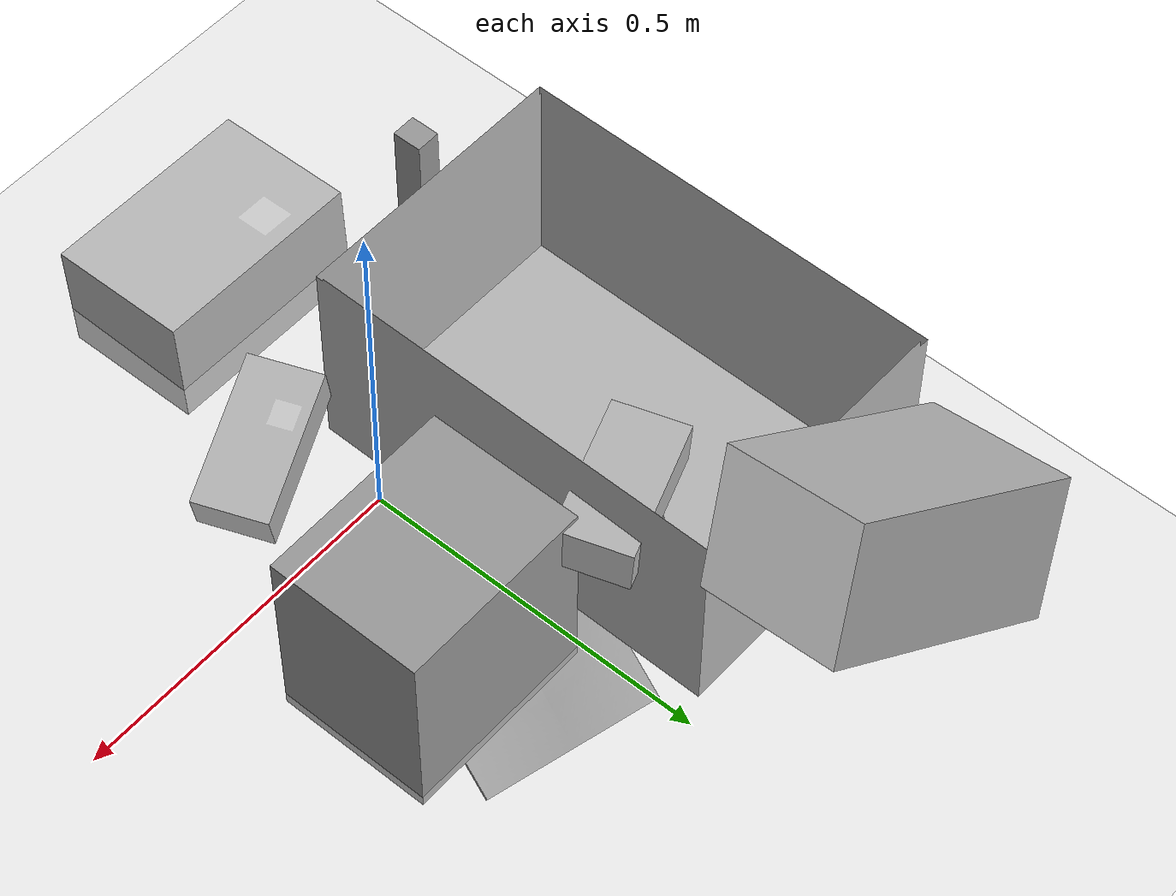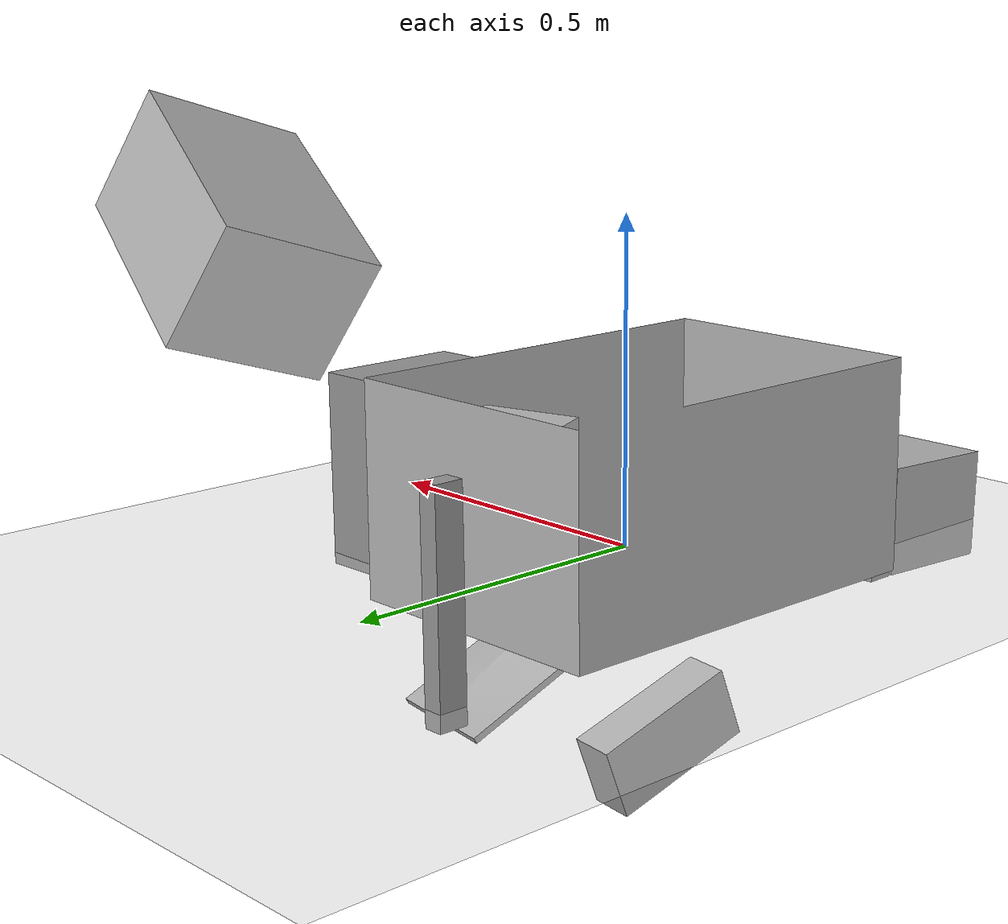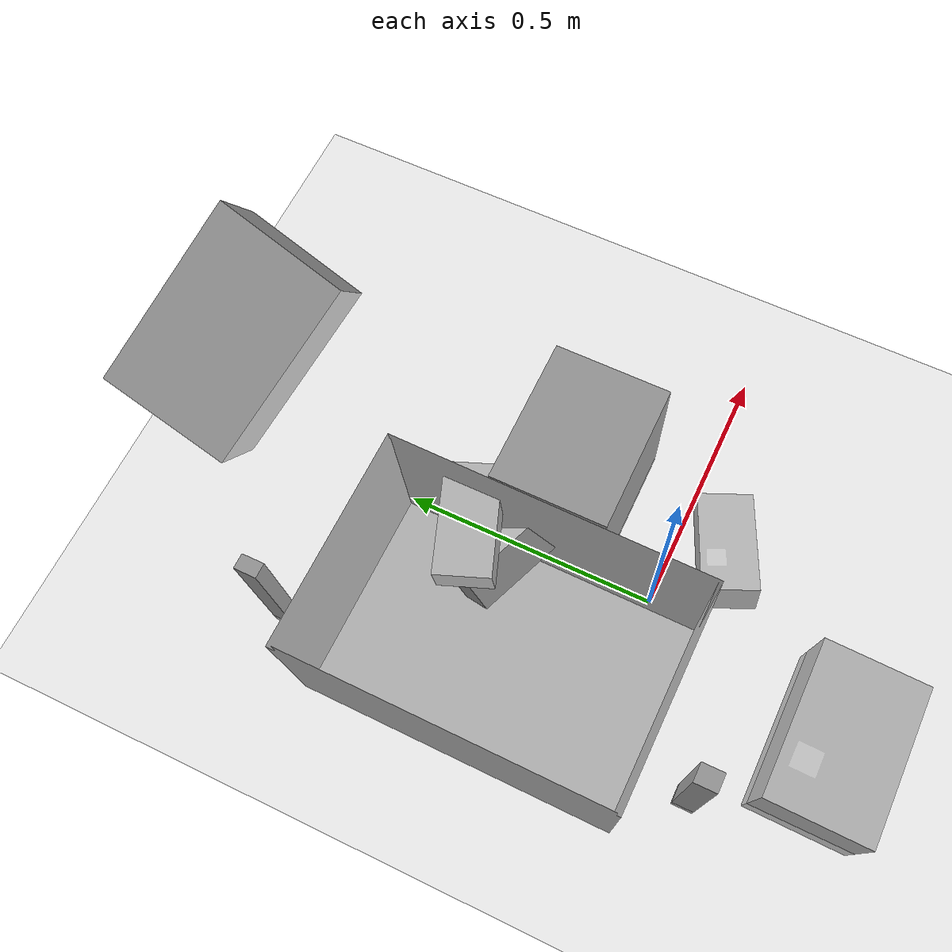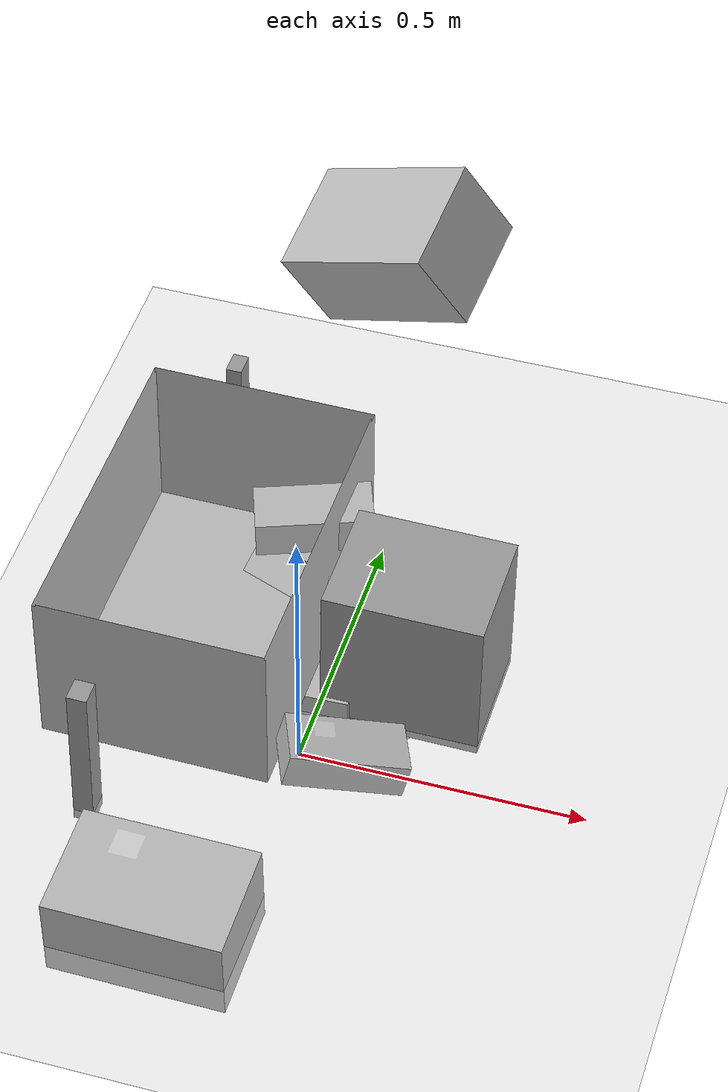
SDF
<sdf version="1.7">
 <world name="default">
  <model name="ground_plane">
   <static>1</static>
   <link name="link">
    <collision name="collision">
     <geometry><plane><normal>0 0 1</normal><size>100 100</size></plane></geometry>
     <surface>
      <contact><collide_bitmask>65535</collide_bitmask></contact>
      <friction><ode><mu>100</mu><mu2>50</mu2></ode></friction>
     </surface>
    </collision>
    <visual name="visual">
     <cast_shadows>0</cast_shadows>
     <geometry><plane><normal>0 0 1</normal><size>100 100</size></plane></geometry>
     <material>
      <script><uri>file://media/materials/scripts/gazebo.material</uri><name>Gazebo/Grey</name></script>
     </material>
    </visual>
   </link>
  </model>
  <model name="trolley">
   <link name="link">
    <inertial>
     <mass>10</mass>
     <inertia><ixy>0</ixy><ixz>0</ixz><iyz>0</iyz><ixx>0.05288</ixx><iyy>0.05288</iyy><izz>0.09132</izz></inertia>
    </inertial>
    <visual name="visual">
     <geometry><mesh><uri>model://trolley/meshes/trolley.dae</uri><scale>1 1 1</scale></mesh></geometry>
     <meta><layer>1</layer></meta>
     <material><shader type="pixel"/></material>
    </visual>
    <collision name="collision">
     <geometry><mesh><uri>model://trolley/meshes/trolley.dae</uri><scale>1 1 1</scale></mesh></geometry>
     <surface>
      <friction>
       <ode><mu>1</mu><mu2>1</mu2><fdir1>0 0 0</fdir1><slip1>0</slip1><slip2>0</slip2></ode>
       <torsional>
        <coefficient>1</coefficient>
        <patch_radius>0</patch_radius>
        <surface_radius>0</surface_radius>
        <use_patch_radius>1</use_patch_radius>
        <ode><slip>0</slip></ode>
       </torsional>
      </friction>
      <bounce><restitution_coefficient>0</restitution_coefficient><threshold>1e+06</threshold></bounce>
      <contact>
       <collide_without_contact>0</collide_without_contact>
       <collide_without_contact_bitmask>1</collide_without_contact_bitmask>
       <collide_bitmask>1</collide_bitmask>
       <ode>
        <soft_cfm>0</soft_cfm>
        <soft_erp>0.2</soft_erp>
        <kp>1e+13</kp>
        <kd>1</kd>
        <max_vel>0.01</max_vel>
        <min_depth>0</min_depth>
       </ode>
       <bullet>
        <split_impulse>1</split_impulse>
        <split_impulse_penetration_threshold>-0.01</split_impulse_penetration_threshold>
        <soft_cfm>0</soft_cfm>
        <soft_erp>0.2</soft_erp>
        <kp>1e+13</kp>
        <kd>1</kd>
       </bullet>
      </contact>
     </surface>
    </collision>
   </link>
   <static>1</static>
   <pose>-0.219324 0.197143 0.037574 0.003714 -0 1.56371</pose>
  </model>
  <model name="unit_box">
   <link name="link">
    <inertial>
     <mass>1</mass>
     <inertia>
      <ixx>0.166667</ixx>
      <ixy>0</ixy>
      <ixz>0</ixz>
      <iyy>0.166667</iyy>
      <iyz>0</iyz>
      <izz>0.166667</izz>
     </inertia>
    </inertial>
    <visual name="visual">
     <geometry><box><size>0.278742 0.220351 0.289713</size></box></geometry>
     <material>
      <script><name>Gazebo/Grey</name><uri>file://media/materials/scripts/gazebo.material</uri></script>
      <shader type="pixel"><normal_map>__default__</normal_map></shader>
     </material>
    </visual>
    <collision name="collision">
     <geometry><box><size>0.278742 0.220351 0.289713</size></box></geometry>
     <surface>
      <friction>
       <ode><mu>1</mu><mu2>1</mu2><fdir1>0 0 0</fdir1><slip1>0</slip1><slip2>0</slip2></ode>
       <torsional>
        <coefficient>1</coefficient>
        <patch_radius>0</patch_radius>
        <surface_radius>0</surface_radius>
        <use_patch_radius>1</use_patch_radius>
        <ode><slip>0</slip></ode>
       </torsional>
      </friction>
      <bounce><restitution_coefficient>0</restitution_coefficient><threshold>1e+06</threshold></bounce>
      <contact>
       <collide_without_contact>0</collide_without_contact>
       <collide_without_contact_bitmask>1</collide_without_contact_bitmask>
       <collide_bitmask>1</collide_bitmask>
       <ode>
        <soft_cfm>0</soft_cfm>
        <soft_erp>0.2</soft_erp>
        <kp>1e+13</kp>
        <kd>1</kd>
        <max_vel>0.01</max_vel>
        <min_depth>0</min_depth>
       </ode>
       <bullet>
        <split_impulse>1</split_impulse>
        <split_impulse_penetration_threshold>-0.01</split_impulse_penetration_threshold>
        <soft_cfm>0</soft_cfm>
        <soft_erp>0.2</soft_erp>
        <kp>1e+13</kp>
        <kd>1</kd>
       </bullet>
      </contact>
     </surface>
    </collision>
   </link>
   <static>1</static>
   <pose>0.144938 0.215931 0.127868 0 0.011281 0</pose>
  </model>
  <model name="unit_box_clone">
   <link name="link">
    <inertial>
     <mass>1</mass>
     <inertia>
      <ixx>0.166667</ixx>
      <ixy>0</ixy>
      <ixz>0</ixz>
      <iyy>0.166667</iyy>
      <iyz>0</iyz>
      <izz>0.166667</izz>
     </inertia>
    </inertial>
    <visual name="visual">
     <geometry><box><size>0.027911 0.0419579 0.304922</size></box></geometry>
     <material>
      <script><name>Gazebo/Grey</name><uri>file://media/materials/scripts/gazebo.material</uri></script>
      <shader type="pixel"><normal_map>__default__</normal_map></shader>
     </material>
    </visual>
    <collision name="collision">
     <geometry><box><size>0.027911 0.0419579 0.304922</size></box></geometry>
     <surface>
      <friction>
       <ode><mu>1</mu><mu2>1</mu2><fdir1>0 0 0</fdir1><slip1>0</slip1><slip2>0</slip2></ode>
       <torsional>
        <coefficient>1</coefficient>
        <patch_radius>0</patch_radius>
        <surface_radius>0</surface_radius>
        <use_patch_radius>1</use_patch_radius>
        <ode><slip>0</slip></ode>
       </torsional>
      </friction>
      <bounce><restitution_coefficient>0</restitution_coefficient><threshold>1e+06</threshold></bounce>
      <contact>
       <collide_without_contact>0</collide_without_contact>
       <collide_without_contact_bitmask>1</collide_without_contact_bitmask>
       <collide_bitmask>1</collide_bitmask>
       <ode>
        <soft_cfm>0</soft_cfm>
        <soft_erp>0.2</soft_erp>
        <kp>1e+13</kp>
        <kd>1</kd>
        <max_vel>0.01</max_vel>
        <min_depth>0</min_depth>
       </ode>
       <bullet>
        <split_impulse>1</split_impulse>
        <split_impulse_penetration_threshold>-0.01</split_impulse_penetration_threshold>
        <soft_cfm>0</soft_cfm>
        <soft_erp>0.2</soft_erp>
        <kp>1e+13</kp>
        <kd>1</kd>
       </bullet>
      </contact>
     </surface>
    </collision>
   </link>
   <static>1</static>
   <pose>-0.305092 0.611653 0.125999 0 0.011281 0</pose>
  </model>
  <model name="unit_box_clone_clone">
   <link name="link">
    <inertial>
     <mass>1</mass>
     <inertia>
      <ixx>0.166667</ixx>
      <ixy>0</ixy>
      <ixz>0</ixz>
      <iyy>0.166667</iyy>
      <iyz>0</iyz>
      <izz>0.166667</izz>
     </inertia>
    </inertial>
    <visual name="visual">
     <geometry><box><size>0.0347626 0.041958 0.298191</size></box></geometry>
     <material>
      <script><name>Gazebo/Grey</name><uri>file://media/materials/scripts/gazebo.material</uri></script>
      <shader type="pixel"><normal_map>__default__</normal_map></shader>
     </material>
    </visual>
    <collision name="collision">
     <geometry><box><size>0.0347626 0.041958 0.298191</size></box></geometry>
     <surface>
      <friction>
       <ode><mu>1</mu><mu2>1</mu2><fdir1>0 0 0</fdir1><slip1>0</slip1><slip2>0</slip2></ode>
       <torsional>
        <coefficient>1</coefficient>
        <patch_radius>0</patch_radius>
        <surface_radius>0</surface_radius>
        <use_patch_radius>1</use_patch_radius>
        <ode><slip>0</slip></ode>
       </torsional>
      </friction>
      <bounce><restitution_coefficient>0</restitution_coefficient><threshold>1e+06</threshold></bounce>
      <contact>
       <collide_without_contact>0</collide_without_contact>
       <collide_without_contact_bitmask>1</collide_without_contact_bitmask>
       <collide_bitmask>1</collide_bitmask>
       <ode>
        <soft_cfm>0</soft_cfm>
        <soft_erp>0.2</soft_erp>
        <kp>1e+13</kp>
        <kd>1</kd>
        <max_vel>0.01</max_vel>
        <min_depth>0</min_depth>
       </ode>
       <bullet>
        <split_impulse>1</split_impulse>
        <split_impulse_penetration_threshold>-0.01</split_impulse_penetration_threshold>
        <soft_cfm>0</soft_cfm>
        <soft_erp>0.2</soft_erp>
        <kp>1e+13</kp>
        <kd>1</kd>
       </bullet>
      </contact>
     </surface>
    </collision>
   </link>
   <static>1</static>
   <pose>-0.303942 -0.202713 0.128004 0 0.011281 0</pose>
  </model>
  <model name="flyer_box_1">
   <link name="link">
    <inertial>
     <mass>1</mass>
     <inertia><ixy>0</ixy><ixz>0</ixz><iyz>0</iyz><ixx>0.05288</ixx><iyy>0.05288</iyy><izz>0.09132</izz></inertia>
    </inertial>
    <visual name="visual">
     <geometry><mesh><uri>model://flyer_boxes/meshes/flyer.dae</uri><scale>1 1 1</scale></mesh></geometry>
     <meta><layer>1</layer></meta>
     <material><shader type="pixel"><normal_map>__default__</normal_map></shader></material>
    </visual>
    <collision name="collision">
     <geometry><mesh><uri>model://flyer_boxes/meshes/flyer.dae</uri><scale>1 1 1</scale></mesh></geometry>
     <surface>
      <friction>
       <ode><mu>1000</mu><mu2>1000</mu2><fdir1>0 0 0</fdir1><slip1>0</slip1><slip2>0</slip2></ode>
       <torsional>
        <coefficient>1</coefficient>
        <patch_radius>0</patch_radius>
        <surface_radius>0</surface_radius>
        <use_patch_radius>1</use_patch_radius>
        <ode><slip>0</slip></ode>
       </torsional>
      </friction>
      <bounce><restitution_coefficient>0</restitution_coefficient><threshold>1</threshold></bounce>
      <contact>
       <collide_without_contact>0</collide_without_contact>
       <collide_without_contact_bitmask>1</collide_without_contact_bitmask>
       <collide_bitmask>1</collide_bitmask>
       <ode>
        <soft_cfm>0</soft_cfm>
        <soft_erp>0.2</soft_erp>
        <kp>10000</kp>
        <kd>1</kd>
        <max_vel>0.01</max_vel>
        <min_depth>0</min_depth>
       </ode>
       <bullet>
        <split_impulse>1</split_impulse>
        <split_impulse_penetration_threshold>-0.01</split_impulse_penetration_threshold>
        <soft_cfm>0</soft_cfm>
        <soft_erp>0.2</soft_erp>
        <kp>10000</kp>
        <kd>1</kd>
       </bullet>
      </contact>
     </surface>
    </collision>
   </link>
   <static>0</static>
   <pose>-0.198123 0.208743 0.099492 0.137148 0.518647 1.32941</pose>
  </model>
  <model name="small_box_1">
   <link name="link">
    <inertial>
     <mass>0.5</mass>
     <inertia><ixy>0</ixy><ixz>0</ixz><iyz>0</iyz><ixx>0.05288</ixx><iyy>0.05288</iyy><izz>0.09132</izz></inertia>
    </inertial>
    <visual name="visual">
     <geometry><mesh><uri>model://small_boxes/meshes/small_box.dae</uri><scale>1 1 1</scale></mesh></geometry>
     <meta><layer>1</layer></meta>
     <material><shader type="pixel"><normal_map>__default__</normal_map></shader></material>
    </visual>
    <collision name="collision">
     <geometry><mesh><uri>model://small_boxes/meshes/small_box.dae</uri><scale>1 1 1</scale></mesh></geometry>
     <surface>
      <friction>
       <ode><mu>1000</mu><mu2>1000</mu2><fdir1>0 0 0</fdir1><slip1>0</slip1><slip2>0</slip2></ode>
       <torsional>
        <coefficient>1</coefficient>
        <patch_radius>0</patch_radius>
        <surface_radius>0</surface_radius>
        <use_patch_radius>1</use_patch_radius>
        <ode><slip>0</slip></ode>
       </torsional>
      </friction>
      <bounce><restitution_coefficient>0</restitution_coefficient><threshold>1</threshold></bounce>
      <contact>
       <collide_without_contact>0</collide_without_contact>
       <collide_without_contact_bitmask>1</collide_without_contact_bitmask>
       <collide_bitmask>1</collide_bitmask>
       <ode>
        <soft_cfm>0</soft_cfm>
        <soft_erp>0.2</soft_erp>
        <kp>10000</kp>
        <kd>1</kd>
        <max_vel>0.01</max_vel>
        <min_depth>0</min_depth>
       </ode>
       <bullet>
        <split_impulse>1</split_impulse>
        <split_impulse_penetration_threshold>-0.01</split_impulse_penetration_threshold>
        <soft_cfm>0</soft_cfm>
        <soft_erp>0.2</soft_erp>
        <kp>10000</kp>
        <kd>1</kd>
       </bullet>
      </contact>
     </surface>
    </collision>
   </link>
   <static>0</static>
   <pose>-0.167215 0.102379 0.230126 -0.02602 0.244964 0.389064</pose>
  </model>
  <model name="medium_box_1">
   <link name="link">
    <inertial>
     <mass>1</mass>
     <inertia><ixy>0</ixy><ixz>0</ixz><iyz>0</iyz><ixx>0.05288</ixx><iyy>0.05288</iyy><izz>0.09132</izz></inertia>
    </inertial>
    <visual name="visual">
     <geometry><mesh><uri>model://medium_boxes/meshes/medium_box.dae</uri><scale>1 1 1</scale></mesh></geometry>
     <meta><layer>1</layer></meta>
     <material><shader type="pixel"><normal_map>__default__</normal_map></shader></material>
    </visual>
    <collision name="collision">
     <geometry><mesh><uri>model://medium_boxes/meshes/medium_box.dae</uri><scale>1 1 1</scale></mesh></geometry>
     <surface>
      <friction>
       <ode><mu>1000</mu><mu2>1000</mu2><fdir1>0 0 0</fdir1><slip1>0</slip1><slip2>0</slip2></ode>
       <torsional>
        <coefficient>1</coefficient>
        <patch_radius>0</patch_radius>
        <surface_radius>0</surface_radius>
        <use_patch_radius>1</use_patch_radius>
        <ode><slip>0</slip></ode>
       </torsional>
      </friction>
      <bounce><restitution_coefficient>0</restitution_coefficient><threshold>1</threshold></bounce>
      <contact>
       <collide_without_contact>0</collide_without_contact>
       <collide_without_contact_bitmask>1</collide_without_contact_bitmask>
       <collide_bitmask>1</collide_bitmask>
       <ode>
        <soft_cfm>0</soft_cfm>
        <soft_erp>0.2</soft_erp>
        <kp>10000</kp>
        <kd>1</kd>
        <max_vel>0.01</max_vel>
        <min_depth>0</min_depth>
       </ode>
       <bullet>
        <split_impulse>1</split_impulse>
        <split_impulse_penetration_threshold>-0.01</split_impulse_penetration_threshold>
        <soft_cfm>0</soft_cfm>
        <soft_erp>0.2</soft_erp>
        <kp>10000</kp>
        <kd>1</kd>
       </bullet>
      </contact>
     </surface>
    </collision>
   </link>
   <static>0</static>
   <pose>-0.265449 0.038607 0.110462 0.043328 0.003943 -0.00753</pose>
  </model>
  <model name="small_box_1_clone">
   <link name="link">
    <inertial>
     <mass>0.5</mass>
     <inertia><ixy>0</ixy><ixz>0</ixz><iyz>0</iyz><ixx>0.05288</ixx><iyy>0.05288</iyy><izz>0.09132</izz></inertia>
    </inertial>
    <visual name="visual">
     <geometry><mesh><uri>model://small_boxes/meshes/small_box.dae</uri><scale>1 1 1</scale></mesh></geometry>
     <meta><layer>1</layer></meta>
     <material><shader type="pixel"><normal_map>__default__</normal_map></shader></material>
    </visual>
    <collision name="collision">
     <geometry><mesh><uri>model://small_boxes/meshes/small_box.dae</uri><scale>1 1 1</scale></mesh></geometry>
     <surface>
      <friction>
       <ode><mu>1000</mu><mu2>1000</mu2><fdir1>0 0 0</fdir1><slip1>0</slip1><slip2>0</slip2></ode>
       <torsional>
        <coefficient>1</coefficient>
        <patch_radius>0</patch_radius>
        <surface_radius>0</surface_radius>
        <use_patch_radius>1</use_patch_radius>
        <ode><slip>0</slip></ode>
       </torsional>
      </friction>
      <bounce><restitution_coefficient>0</restitution_coefficient><threshold>1</threshold></bounce>
      <contact>
       <collide_without_contact>0</collide_without_contact>
       <collide_without_contact_bitmask>1</collide_without_contact_bitmask>
       <collide_bitmask>1</collide_bitmask>
       <ode>
        <soft_cfm>0</soft_cfm>
        <soft_erp>0.2</soft_erp>
        <kp>10000</kp>
        <kd>1</kd>
        <max_vel>0.01</max_vel>
        <min_depth>0</min_depth>
       </ode>
       <bullet>
        <split_impulse>1</split_impulse>
        <split_impulse_penetration_threshold>-0.01</split_impulse_penetration_threshold>
        <soft_cfm>0</soft_cfm>
        <soft_erp>0.2</soft_erp>
        <kp>10000</kp>
        <kd>1</kd>
       </bullet>
      </contact>
     </surface>
    </collision>
   </link>
   <static>0</static>
   <pose>-0.252521 0.422046 0.059361 0.000132 -0.003386 0.030737</pose>
  </model>
  <model name="small_box_1_clone_0">
   <link name="link">
    <inertial>
     <mass>0.5</mass>
     <inertia><ixy>0</ixy><ixz>0</ixz><iyz>0</iyz><ixx>0.05288</ixx><iyy>0.05288</iyy><izz>0.09132</izz></inertia>
    </inertial>
    <visual name="visual">
     <geometry><mesh><uri>model://small_boxes/meshes/small_box.dae</uri><scale>1 1 1</scale></mesh></geometry>
     <meta><layer>1</layer></meta>
     <material><shader type="pixel"><normal_map>__default__</normal_map></shader></material>
    </visual>
    <collision name="collision">
     <geometry><mesh><uri>model://small_boxes/meshes/small_box.dae</uri><scale>1 1 1</scale></mesh></geometry>
     <surface>
      <friction>
       <ode><mu>1000</mu><mu2>1000</mu2><fdir1>0 0 0</fdir1><slip1>0</slip1><slip2>0</slip2></ode>
       <torsional>
        <coefficient>1</coefficient>
        <patch_radius>0</patch_radius>
        <surface_radius>0</surface_radius>
        <use_patch_radius>1</use_patch_radius>
        <ode><slip>0</slip></ode>
       </torsional>
      </friction>
      <bounce><restitution_coefficient>0</restitution_coefficient><threshold>1</threshold></bounce>
      <contact>
       <collide_without_contact>0</collide_without_contact>
       <collide_without_contact_bitmask>1</collide_without_contact_bitmask>
       <collide_bitmask>1</collide_bitmask>
       <ode>
        <soft_cfm>0</soft_cfm>
        <soft_erp>0.2</soft_erp>
        <kp>10000</kp>
        <kd>1</kd>
        <max_vel>0.01</max_vel>
        <min_depth>0</min_depth>
       </ode>
       <bullet>
        <split_impulse>1</split_impulse>
        <split_impulse_penetration_threshold>-0.01</split_impulse_penetration_threshold>
        <soft_cfm>0</soft_cfm>
        <soft_erp>0.2</soft_erp>
        <kp>10000</kp>
        <kd>1</kd>
       </bullet>
      </contact>
     </surface>
    </collision>
   </link>
   <static>0</static>
   <pose>-0.158773 -0.009677 0.187987 3.09529 -0.020061 0.35155</pose>
  </model>
  <model name="small_box_1_clone_clone">
   <link name="link">
    <inertial>
     <mass>0.5</mass>
     <inertia><ixy>0</ixy><ixz>0</ixz><iyz>0</iyz><ixx>0.05288</ixx><iyy>0.05288</iyy><izz>0.09132</izz></inertia>
    </inertial>
    <visual name="visual">
     <geometry><mesh><uri>model://small_boxes/meshes/small_box.dae</uri><scale>1 1 1</scale></mesh></geometry>
     <meta><layer>1</layer></meta>
     <material><shader type="pixel"><normal_map>__default__</normal_map></shader></material>
    </visual>
    <collision name="collision">
     <geometry><mesh><uri>model://small_boxes/meshes/small_box.dae</uri><scale>1 1 1</scale></mesh></geometry>
     <surface>
      <friction>
       <ode><mu>1000</mu><mu2>1000</mu2><fdir1>0 0 0</fdir1><slip1>0</slip1><slip2>0</slip2></ode>
       <torsional>
        <coefficient>1</coefficient>
        <patch_radius>0</patch_radius>
        <surface_radius>0</surface_radius>
        <use_patch_radius>1</use_patch_radius>
        <ode><slip>0</slip></ode>
       </torsional>
      </friction>
      <bounce><restitution_coefficient>0</restitution_coefficient><threshold>1</threshold></bounce>
      <contact>
       <collide_without_contact>0</collide_without_contact>
       <collide_without_contact_bitmask>1</collide_without_contact_bitmask>
       <collide_bitmask>1</collide_bitmask>
       <ode>
        <soft_cfm>0</soft_cfm>
        <soft_erp>0.2</soft_erp>
        <kp>10000</kp>
        <kd>1</kd>
        <max_vel>0.01</max_vel>
        <min_depth>0</min_depth>
       </ode>
       <bullet>
        <split_impulse>1</split_impulse>
        <split_impulse_penetration_threshold>-0.01</split_impulse_penetration_threshold>
        <soft_cfm>0</soft_cfm>
        <soft_erp>0.2</soft_erp>
        <kp>10000</kp>
        <kd>1</kd>
       </bullet>
      </contact>
     </surface>
    </collision>
   </link>
   <static>0</static>
   <pose>-0.288645 0.173049 0.203281 1.5552 0.35482 1.44431</pose>
  </model>
  <model name="small_box_1_clone_clone_0">
   <link name="link">
    <inertial>
     <mass>0.5</mass>
     <inertia><ixy>0</ixy><ixz>0</ixz><iyz>0</iyz><ixx>0.05288</ixx><iyy>0.05288</iyy><izz>0.09132</izz></inertia>
    </inertial>
    <visual name="visual">
     <geometry><mesh><uri>model://small_boxes/meshes/small_box.dae</uri><scale>1 1 1</scale></mesh></geometry>
     <meta><layer>1</layer></meta>
     <material><shader type="pixel"><normal_map>__default__</normal_map></shader></material>
    </visual>
    <collision name="collision">
     <geometry><mesh><uri>model://small_boxes/meshes/small_box.dae</uri><scale>1 1 1</scale></mesh></geometry>
     <surface>
      <friction>
       <ode><mu>1000</mu><mu2>1000</mu2><fdir1>0 0 0</fdir1><slip1>0</slip1><slip2>0</slip2></ode>
       <torsional>
        <coefficient>1</coefficient>
        <patch_radius>0</patch_radius>
        <surface_radius>0</surface_radius>
        <use_patch_radius>1</use_patch_radius>
        <ode><slip>0</slip></ode>
       </torsional>
      </friction>
      <bounce><restitution_coefficient>0</restitution_coefficient><threshold>1</threshold></bounce>
      <contact>
       <collide_without_contact>0</collide_without_contact>
       <collide_without_contact_bitmask>1</collide_without_contact_bitmask>
       <collide_bitmask>1</collide_bitmask>
       <ode>
        <soft_cfm>0</soft_cfm>
        <soft_erp>0.2</soft_erp>
        <kp>10000</kp>
        <kd>1</kd>
        <max_vel>0.01</max_vel>
        <min_depth>0</min_depth>
       </ode>
       <bullet>
        <split_impulse>1</split_impulse>
        <split_impulse_penetration_threshold>-0.01</split_impulse_penetration_threshold>
        <soft_cfm>0</soft_cfm>
        <soft_erp>0.2</soft_erp>
        <kp>10000</kp>
        <kd>1</kd>
       </bullet>
      </contact>
     </surface>
    </collision>
   </link>
   <static>0</static>
   <pose>-0.326711 0.133268 0.316423 2.23976 -0.016363 -0.381092</pose>
  </model>
  <model name="medium_box_1_clone">
   <link name="link">
    <inertial>
     <mass>1</mass>
     <inertia><ixy>0</ixy><ixz>0</ixz><iyz>0</iyz><ixx>0.05288</ixx><iyy>0.05288</iyy><izz>0.09132</izz></inertia>
    </inertial>
    <visual name="visual">
     <geometry><mesh><uri>model://medium_boxes/meshes/medium_box.dae</uri><scale>1 1 1</scale></mesh></geometry>
     <meta><layer>1</layer></meta>
     <material><shader type="pixel"><normal_map>__default__</normal_map></shader></material>
    </visual>
    <collision name="collision">
     <geometry><mesh><uri>model://medium_boxes/meshes/medium_box.dae</uri><scale>1 1 1</scale></mesh></geometry>
     <surface>
      <friction>
       <ode><mu>1000</mu><mu2>1000</mu2><fdir1>0 0 0</fdir1><slip1>0</slip1><slip2>0</slip2></ode>
       <torsional>
        <coefficient>1</coefficient>
        <patch_radius>0</patch_radius>
        <surface_radius>0</surface_radius>
        <use_patch_radius>1</use_patch_radius>
        <ode><slip>0</slip></ode>
       </torsional>
      </friction>
      <bounce><restitution_coefficient>0</restitution_coefficient><threshold>1</threshold></bounce>
      <contact>
       <collide_without_contact>0</collide_without_contact>
       <collide_without_contact_bitmask>1</collide_without_contact_bitmask>
       <collide_bitmask>1</collide_bitmask>
       <ode>
        <soft_cfm>0</soft_cfm>
        <soft_erp>0.2</soft_erp>
        <kp>10000</kp>
        <kd>1</kd>
        <max_vel>0.01</max_vel>
        <min_depth>0</min_depth>
       </ode>
       <bullet>
        <split_impulse>1</split_impulse>
        <split_impulse_penetration_threshold>-0.01</split_impulse_penetration_threshold>
        <soft_cfm>0</soft_cfm>
        <soft_erp>0.2</soft_erp>
        <kp>10000</kp>
        <kd>1</kd>
       </bullet>
      </contact>
     </surface>
    </collision>
   </link>
   <static>0</static>
   <pose>-0.202028 0.33287 0.289405 -2.79729 -0.431648 -0.288173</pose>
  </model>
 </world>
</sdf>
